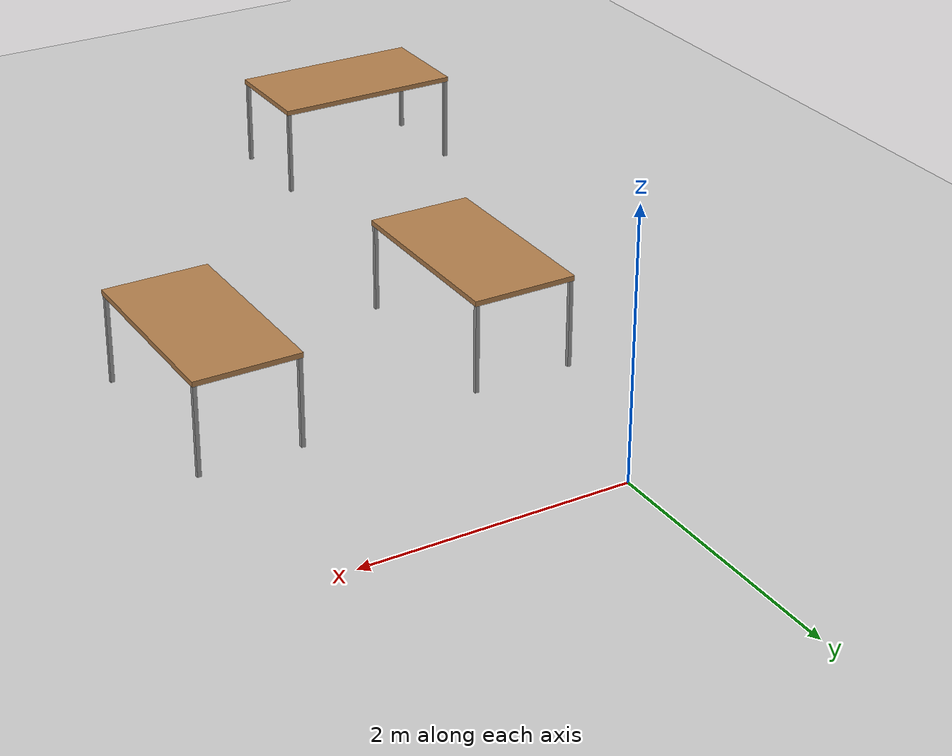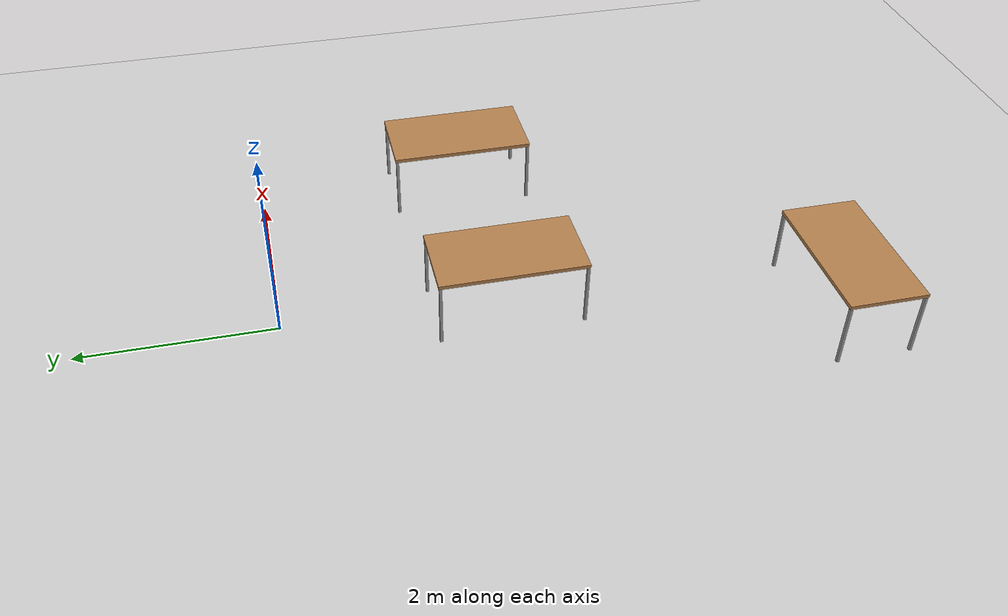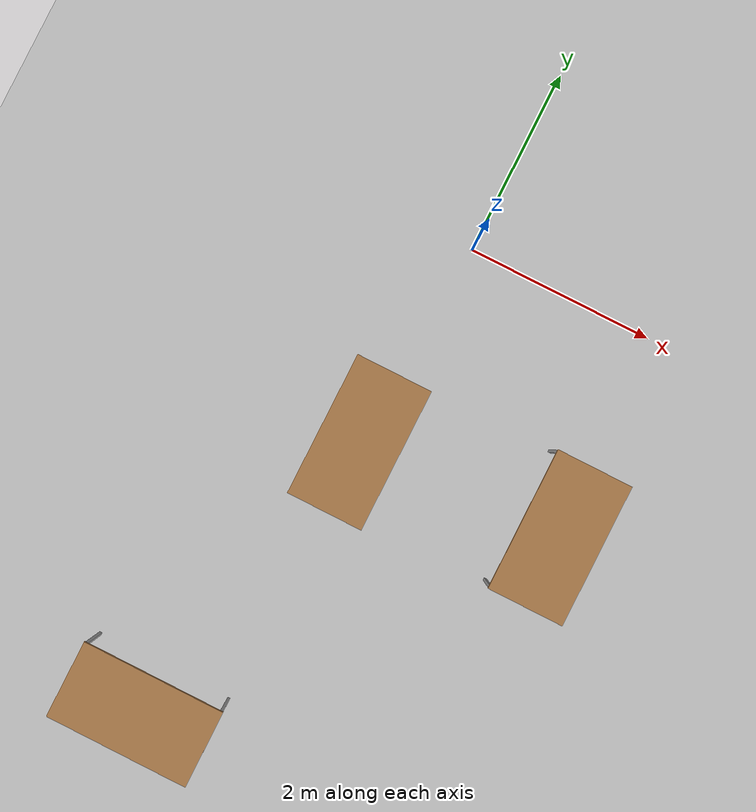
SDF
<sdf version="1.6">
 <world name="default">
  <model name="ground_plane">
   <static>1</static>
   <link name="link">
    <collision name="collision">
     <geometry><plane><normal>0 0 1</normal><size>100 100</size></plane></geometry>
     <surface>
      <contact><collide_bitmask>65535</collide_bitmask></contact>
      <friction><ode><mu>100</mu><mu2>50</mu2></ode></friction>
     </surface>
    </collision>
    <visual name="visual">
     <cast_shadows>0</cast_shadows>
     <geometry><plane><normal>0 0 1</normal><size>100 100</size></plane></geometry>
     <material>
      <script><uri>file://media/materials/scripts/gazebo.material</uri><name>Gazebo/Grey</name></script>
     </material>
    </visual>
   </link>
  </model>
  <model name="table_long">
   <link name="link">
    <inertial>
     <mass>1</mass>
     <inertia><ixx>1</ixx><ixy>0</ixy><ixz>0</ixz><iyy>1</iyy><iyz>0</iyz><izz>1</izz></inertia>
    </inertial>
    <visual name="front_left_leg">
     <pose>0.73 0.38 0.35 0 -0 0</pose>
     <geometry><box><size>0.03 0.03 0.7</size></box></geometry>
     <material>
      <script><uri>file://media/materials/scripts/gazebo.material</uri><name>Gazebo/Grey</name></script>
      <ambient>0.3 0.3 0.3 1</ambient>
      <diffuse>0.7 0.7 0.7 1</diffuse>
      <specular>0.01 0.01 0.01 1</specular>
      <emissive>0 0 0 1</emissive>
     </material>
    </visual>
    <visual name="front_right_leg">
     <pose>0.73 -0.38 0.35 0 -0 0</pose>
     <geometry><box><size>0.03 0.03 0.7</size></box></geometry>
     <material>
      <script><uri>file://media/materials/scripts/gazebo.material</uri><name>Gazebo/Grey</name></script>
      <ambient>0.3 0.3 0.3 1</ambient>
      <diffuse>0.7 0.7 0.7 1</diffuse>
      <specular>0.01 0.01 0.01 1</specular>
      <emissive>0 0 0 1</emissive>
     </material>
    </visual>
    <visual name="visual1">
     <pose>0 0 0.7 0 -0 0</pose>
     <geometry><box><size>1.5 0.8 0.04</size></box></geometry>
     <material>
      <script><uri>file://media/materials/scripts/gazebo.material</uri><name>Gazebo/Wood</name></script>
      <ambient>1 1 1 1</ambient>
      <diffuse>1 1 1 1</diffuse>
      <specular>0.2 0.2 0.2 1</specular>
      <emissive>0 0 0 1</emissive>
     </material>
    </visual>
    <visual name="back_right_leg">
     <pose>-0.73 -0.38 0.35 0 -0 0</pose>
     <geometry><box><size>0.03 0.03 0.7</size></box></geometry>
     <material>
      <script><uri>file://media/materials/scripts/gazebo.material</uri><name>Gazebo/Grey</name></script>
      <ambient>0.3 0.3 0.3 1</ambient>
      <diffuse>0.7 0.7 0.7 1</diffuse>
      <specular>0.01 0.01 0.01 1</specular>
      <emissive>0 0 0 1</emissive>
     </material>
    </visual>
    <visual name="back_left_leg">
     <pose>-0.73 0.38 0.35 0 -0 0</pose>
     <geometry><box><size>0.03 0.03 0.7</size></box></geometry>
     <material>
      <script><uri>file://media/materials/scripts/gazebo.material</uri><name>Gazebo/Grey</name></script>
      <ambient>0.3 0.3 0.3 1</ambient>
      <diffuse>0.7 0.7 0.7 1</diffuse>
      <specular>0.01 0.01 0.01 1</specular>
      <emissive>0 0 0 1</emissive>
     </material>
    </visual>
    <collision name="front_right_leg">
     <pose>0.73 -0.38 0.35 0 -0 0</pose>
     <geometry><box><size>0.03 0.03 0.7</size></box></geometry>
     <surface>
      <friction>
       <ode><mu>1</mu><mu2>1</mu2><fdir1>0 0 0</fdir1><slip1>0</slip1><slip2>0</slip2></ode>
       <torsional>
        <coefficient>1</coefficient>
        <patch_radius>0</patch_radius>
        <surface_radius>0</surface_radius>
        <use_patch_radius>1</use_patch_radius>
        <ode><slip>0</slip></ode>
       </torsional>
      </friction>
      <bounce><restitution_coefficient>0</restitution_coefficient><threshold>1e+06</threshold></bounce>
      <contact>
       <collide_without_contact>0</collide_without_contact>
       <collide_without_contact_bitmask>1</collide_without_contact_bitmask>
       <collide_bitmask>1</collide_bitmask>
       <ode>
        <soft_cfm>0</soft_cfm>
        <soft_erp>0.2</soft_erp>
        <kp>1e+13</kp>
        <kd>1</kd>
        <max_vel>0.01</max_vel>
        <min_depth>0</min_depth>
       </ode>
      </contact>
     </surface>
    </collision>
    <collision name="front_left_leg">
     <pose>0.73 0.38 0.35 0 -0 0</pose>
     <geometry><box><size>0.03 0.03 0.699999</size></box></geometry>
     <surface>
      <friction>
       <ode><mu>1</mu><mu2>1</mu2><fdir1>0 0 0</fdir1><slip1>0</slip1><slip2>0</slip2></ode>
       <torsional>
        <coefficient>1</coefficient>
        <patch_radius>0</patch_radius>
        <surface_radius>0</surface_radius>
        <use_patch_radius>1</use_patch_radius>
        <ode><slip>0</slip></ode>
       </torsional>
      </friction>
      <bounce><restitution_coefficient>0</restitution_coefficient><threshold>1e+06</threshold></bounce>
      <contact>
       <collide_without_contact>0</collide_without_contact>
       <collide_without_contact_bitmask>1</collide_without_contact_bitmask>
       <collide_bitmask>1</collide_bitmask>
       <ode>
        <soft_cfm>0</soft_cfm>
        <soft_erp>0.2</soft_erp>
        <kp>1e+13</kp>
        <kd>1</kd>
        <max_vel>0.01</max_vel>
        <min_depth>0</min_depth>
       </ode>
      </contact>
     </surface>
    </collision>
    <collision name="back_right_leg">
     <pose>-0.73 -0.38 0.35 0 -0 0</pose>
     <geometry><box><size>0.03 0.03 0.7</size></box></geometry>
     <surface>
      <friction>
       <ode><mu>1</mu><mu2>1</mu2><fdir1>0 0 0</fdir1><slip1>0</slip1><slip2>0</slip2></ode>
       <torsional>
        <coefficient>1</coefficient>
        <patch_radius>0</patch_radius>
        <surface_radius>0</surface_radius>
        <use_patch_radius>1</use_patch_radius>
        <ode><slip>0</slip></ode>
       </torsional>
      </friction>
      <bounce><restitution_coefficient>0</restitution_coefficient><threshold>1e+06</threshold></bounce>
      <contact>
       <collide_without_contact>0</collide_without_contact>
       <collide_without_contact_bitmask>1</collide_without_contact_bitmask>
       <collide_bitmask>1</collide_bitmask>
       <ode>
        <soft_cfm>0</soft_cfm>
        <soft_erp>0.2</soft_erp>
        <kp>1e+13</kp>
        <kd>1</kd>
        <max_vel>0.01</max_vel>
        <min_depth>0</min_depth>
       </ode>
      </contact>
     </surface>
    </collision>
    <collision name="surface">
     <pose>0 0 0.7 0 -0 0</pose>
     <geometry><box><size>1.5 0.8 0.04</size></box></geometry>
     <surface>
      <friction>
       <ode><mu>0.6</mu><mu2>0.6</mu2><fdir1>0 0 0</fdir1><slip1>0</slip1><slip2>0</slip2></ode>
       <torsional>
        <coefficient>1</coefficient>
        <patch_radius>0</patch_radius>
        <surface_radius>0</surface_radius>
        <use_patch_radius>1</use_patch_radius>
        <ode><slip>0</slip></ode>
       </torsional>
      </friction>
      <bounce><restitution_coefficient>0</restitution_coefficient><threshold>1e+06</threshold></bounce>
      <contact>
       <collide_without_contact>0</collide_without_contact>
       <collide_without_contact_bitmask>1</collide_without_contact_bitmask>
       <collide_bitmask>1</collide_bitmask>
       <ode>
        <soft_cfm>0</soft_cfm>
        <soft_erp>0.2</soft_erp>
        <kp>1e+13</kp>
        <kd>1</kd>
        <max_vel>0.01</max_vel>
        <min_depth>0</min_depth>
       </ode>
      </contact>
     </surface>
    </collision>
    <collision name="back_left_leg">
     <pose>-0.73 0.38 0.35 0 -0 0</pose>
     <geometry><box><size>0.03 0.03 0.7</size></box></geometry>
     <surface>
      <friction>
       <ode><mu>1</mu><mu2>1</mu2><fdir1>0 0 0</fdir1><slip1>0</slip1><slip2>0</slip2></ode>
       <torsional>
        <coefficient>1</coefficient>
        <patch_radius>0</patch_radius>
        <surface_radius>0</surface_radius>
        <use_patch_radius>1</use_patch_radius>
        <ode><slip>0</slip></ode>
       </torsional>
      </friction>
      <bounce><restitution_coefficient>0</restitution_coefficient><threshold>1e+06</threshold></bounce>
      <contact>
       <collide_without_contact>0</collide_without_contact>
       <collide_without_contact_bitmask>1</collide_without_contact_bitmask>
       <collide_bitmask>1</collide_bitmask>
       <ode>
        <soft_cfm>0</soft_cfm>
        <soft_erp>0.2</soft_erp>
        <kp>1e+13</kp>
        <kd>1</kd>
        <max_vel>0.01</max_vel>
        <min_depth>0</min_depth>
       </ode>
      </contact>
     </surface>
    </collision>
   </link>
   <static>1</static>
   <pose>-0.873749 -5.57004 0 0 -0 0</pose>
  </model>
  <model name="table_long_clone">
   <link name="link">
    <inertial>
     <mass>1</mass>
     <inertia><ixx>1</ixx><ixy>0</ixy><ixz>0</ixz><iyy>1</iyy><iyz>0</iyz><izz>1</izz></inertia>
    </inertial>
    <visual name="front_left_leg">
     <pose>0.73 0.38 0.35 0 -0 0</pose>
     <geometry><box><size>0.03 0.03 0.7</size></box></geometry>
     <material>
      <script><uri>file://media/materials/scripts/gazebo.material</uri><name>Gazebo/Grey</name></script>
      <ambient>0.3 0.3 0.3 1</ambient>
      <diffuse>0.7 0.7 0.7 1</diffuse>
      <specular>0.01 0.01 0.01 1</specular>
      <emissive>0 0 0 1</emissive>
     </material>
    </visual>
    <visual name="front_right_leg">
     <pose>0.73 -0.38 0.35 0 -0 0</pose>
     <geometry><box><size>0.03 0.03 0.7</size></box></geometry>
     <material>
      <script><uri>file://media/materials/scripts/gazebo.material</uri><name>Gazebo/Grey</name></script>
      <ambient>0.3 0.3 0.3 1</ambient>
      <diffuse>0.7 0.7 0.7 1</diffuse>
      <specular>0.01 0.01 0.01 1</specular>
      <emissive>0 0 0 1</emissive>
     </material>
    </visual>
    <visual name="visual1">
     <pose>0 0 0.7 0 -0 0</pose>
     <geometry><box><size>1.5 0.8 0.04</size></box></geometry>
     <material>
      <script><uri>file://media/materials/scripts/gazebo.material</uri><name>Gazebo/Wood</name></script>
      <ambient>1 1 1 1</ambient>
      <diffuse>1 1 1 1</diffuse>
      <specular>0.2 0.2 0.2 1</specular>
      <emissive>0 0 0 1</emissive>
     </material>
    </visual>
    <visual name="back_right_leg">
     <pose>-0.73 -0.38 0.35 0 -0 0</pose>
     <geometry><box><size>0.03 0.03 0.7</size></box></geometry>
     <material>
      <script><uri>file://media/materials/scripts/gazebo.material</uri><name>Gazebo/Grey</name></script>
      <ambient>0.3 0.3 0.3 1</ambient>
      <diffuse>0.7 0.7 0.7 1</diffuse>
      <specular>0.01 0.01 0.01 1</specular>
      <emissive>0 0 0 1</emissive>
     </material>
    </visual>
    <visual name="back_left_leg">
     <pose>-0.73 0.38 0.35 0 -0 0</pose>
     <geometry><box><size>0.03 0.03 0.7</size></box></geometry>
     <material>
      <script><uri>file://media/materials/scripts/gazebo.material</uri><name>Gazebo/Grey</name></script>
      <ambient>0.3 0.3 0.3 1</ambient>
      <diffuse>0.7 0.7 0.7 1</diffuse>
      <specular>0.01 0.01 0.01 1</specular>
      <emissive>0 0 0 1</emissive>
     </material>
    </visual>
    <collision name="front_right_leg">
     <pose>0.73 -0.38 0.35 0 -0 0</pose>
     <geometry><box><size>0.03 0.03 0.7</size></box></geometry>
     <surface>
      <friction>
       <ode><mu>1</mu><mu2>1</mu2><fdir1>0 0 0</fdir1><slip1>0</slip1><slip2>0</slip2></ode>
       <torsional>
        <coefficient>1</coefficient>
        <patch_radius>0</patch_radius>
        <surface_radius>0</surface_radius>
        <use_patch_radius>1</use_patch_radius>
        <ode><slip>0</slip></ode>
       </torsional>
      </friction>
      <bounce><restitution_coefficient>0</restitution_coefficient><threshold>1e+06</threshold></bounce>
      <contact>
       <collide_without_contact>0</collide_without_contact>
       <collide_without_contact_bitmask>1</collide_without_contact_bitmask>
       <collide_bitmask>1</collide_bitmask>
       <ode>
        <soft_cfm>0</soft_cfm>
        <soft_erp>0.2</soft_erp>
        <kp>1e+13</kp>
        <kd>1</kd>
        <max_vel>0.01</max_vel>
        <min_depth>0</min_depth>
       </ode>
      </contact>
     </surface>
    </collision>
    <collision name="front_left_leg">
     <pose>0.73 0.38 0.35 0 -0 0</pose>
     <geometry><box><size>0.03 0.03 0.699999</size></box></geometry>
     <surface>
      <friction>
       <ode><mu>1</mu><mu2>1</mu2><fdir1>0 0 0</fdir1><slip1>0</slip1><slip2>0</slip2></ode>
       <torsional>
        <coefficient>1</coefficient>
        <patch_radius>0</patch_radius>
        <surface_radius>0</surface_radius>
        <use_patch_radius>1</use_patch_radius>
        <ode><slip>0</slip></ode>
       </torsional>
      </friction>
      <bounce><restitution_coefficient>0</restitution_coefficient><threshold>1e+06</threshold></bounce>
      <contact>
       <collide_without_contact>0</collide_without_contact>
       <collide_without_contact_bitmask>1</collide_without_contact_bitmask>
       <collide_bitmask>1</collide_bitmask>
       <ode>
        <soft_cfm>0</soft_cfm>
        <soft_erp>0.2</soft_erp>
        <kp>1e+13</kp>
        <kd>1</kd>
        <max_vel>0.01</max_vel>
        <min_depth>0</min_depth>
       </ode>
      </contact>
     </surface>
    </collision>
    <collision name="back_right_leg">
     <pose>-0.73 -0.38 0.35 0 -0 0</pose>
     <geometry><box><size>0.03 0.03 0.7</size></box></geometry>
     <surface>
      <friction>
       <ode><mu>1</mu><mu2>1</mu2><fdir1>0 0 0</fdir1><slip1>0</slip1><slip2>0</slip2></ode>
       <torsional>
        <coefficient>1</coefficient>
        <patch_radius>0</patch_radius>
        <surface_radius>0</surface_radius>
        <use_patch_radius>1</use_patch_radius>
        <ode><slip>0</slip></ode>
       </torsional>
      </friction>
      <bounce><restitution_coefficient>0</restitution_coefficient><threshold>1e+06</threshold></bounce>
      <contact>
       <collide_without_contact>0</collide_without_contact>
       <collide_without_contact_bitmask>1</collide_without_contact_bitmask>
       <collide_bitmask>1</collide_bitmask>
       <ode>
        <soft_cfm>0</soft_cfm>
        <soft_erp>0.2</soft_erp>
        <kp>1e+13</kp>
        <kd>1</kd>
        <max_vel>0.01</max_vel>
        <min_depth>0</min_depth>
       </ode>
      </contact>
     </surface>
    </collision>
    <collision name="surface">
     <pose>0 0 0.7 0 -0 0</pose>
     <geometry><box><size>1.5 0.8 0.04</size></box></geometry>
     <surface>
      <friction>
       <ode><mu>0.6</mu><mu2>0.6</mu2><fdir1>0 0 0</fdir1><slip1>0</slip1><slip2>0</slip2></ode>
       <torsional>
        <coefficient>1</coefficient>
        <patch_radius>0</patch_radius>
        <surface_radius>0</surface_radius>
        <use_patch_radius>1</use_patch_radius>
        <ode><slip>0</slip></ode>
       </torsional>
      </friction>
      <bounce><restitution_coefficient>0</restitution_coefficient><threshold>1e+06</threshold></bounce>
      <contact>
       <collide_without_contact>0</collide_without_contact>
       <collide_without_contact_bitmask>1</collide_without_contact_bitmask>
       <collide_bitmask>1</collide_bitmask>
       <ode>
        <soft_cfm>0</soft_cfm>
        <soft_erp>0.2</soft_erp>
        <kp>1e+13</kp>
        <kd>1</kd>
        <max_vel>0.01</max_vel>
        <min_depth>0</min_depth>
       </ode>
      </contact>
     </surface>
    </collision>
    <collision name="back_left_leg">
     <pose>-0.73 0.38 0.35 0 -0 0</pose>
     <geometry><box><size>0.03 0.03 0.7</size></box></geometry>
     <surface>
      <friction>
       <ode><mu>1</mu><mu2>1</mu2><fdir1>0 0 0</fdir1><slip1>0</slip1><slip2>0</slip2></ode>
       <torsional>
        <coefficient>1</coefficient>
        <patch_radius>0</patch_radius>
        <surface_radius>0</surface_radius>
        <use_patch_radius>1</use_patch_radius>
        <ode><slip>0</slip></ode>
       </torsional>
      </friction>
      <bounce><restitution_coefficient>0</restitution_coefficient><threshold>1e+06</threshold></bounce>
      <contact>
       <collide_without_contact>0</collide_without_contact>
       <collide_without_contact_bitmask>1</collide_without_contact_bitmask>
       <collide_bitmask>1</collide_bitmask>
       <ode>
        <soft_cfm>0</soft_cfm>
        <soft_erp>0.2</soft_erp>
        <kp>1e+13</kp>
        <kd>1</kd>
        <max_vel>0.01</max_vel>
        <min_depth>0</min_depth>
       </ode>
      </contact>
     </surface>
    </collision>
   </link>
   <static>1</static>
   <pose>-0.133139 -2.26203 0 0 -0 1.57</pose>
  </model>
  <model name="table_long_clone_clone">
   <link name="link">
    <inertial>
     <mass>1</mass>
     <inertia><ixx>1</ixx><ixy>0</ixy><ixz>0</ixz><iyy>1</iyy><iyz>0</iyz><izz>1</izz></inertia>
    </inertial>
    <visual name="front_left_leg">
     <pose>0.73 0.38 0.35 0 -0 0</pose>
     <geometry><box><size>0.03 0.03 0.7</size></box></geometry>
     <material>
      <script><uri>file://media/materials/scripts/gazebo.material</uri><name>Gazebo/Grey</name></script>
      <ambient>0.3 0.3 0.3 1</ambient>
      <diffuse>0.7 0.7 0.7 1</diffuse>
      <specular>0.01 0.01 0.01 1</specular>
      <emissive>0 0 0 1</emissive>
     </material>
    </visual>
    <visual name="front_right_leg">
     <pose>0.73 -0.38 0.35 0 -0 0</pose>
     <geometry><box><size>0.03 0.03 0.7</size></box></geometry>
     <material>
      <script><uri>file://media/materials/scripts/gazebo.material</uri><name>Gazebo/Grey</name></script>
      <ambient>0.3 0.3 0.3 1</ambient>
      <diffuse>0.7 0.7 0.7 1</diffuse>
      <specular>0.01 0.01 0.01 1</specular>
      <emissive>0 0 0 1</emissive>
     </material>
    </visual>
    <visual name="visual1">
     <pose>0 0 0.7 0 -0 0</pose>
     <geometry><box><size>1.5 0.8 0.04</size></box></geometry>
     <material>
      <script><uri>file://media/materials/scripts/gazebo.material</uri><name>Gazebo/Wood</name></script>
      <ambient>1 1 1 1</ambient>
      <diffuse>1 1 1 1</diffuse>
      <specular>0.2 0.2 0.2 1</specular>
      <emissive>0 0 0 1</emissive>
     </material>
    </visual>
    <visual name="back_right_leg">
     <pose>-0.73 -0.38 0.35 0 -0 0</pose>
     <geometry><box><size>0.03 0.03 0.7</size></box></geometry>
     <material>
      <script><uri>file://media/materials/scripts/gazebo.material</uri><name>Gazebo/Grey</name></script>
      <ambient>0.3 0.3 0.3 1</ambient>
      <diffuse>0.7 0.7 0.7 1</diffuse>
      <specular>0.01 0.01 0.01 1</specular>
      <emissive>0 0 0 1</emissive>
     </material>
    </visual>
    <visual name="back_left_leg">
     <pose>-0.73 0.38 0.35 0 -0 0</pose>
     <geometry><box><size>0.03 0.03 0.7</size></box></geometry>
     <material>
      <script><uri>file://media/materials/scripts/gazebo.material</uri><name>Gazebo/Grey</name></script>
      <ambient>0.3 0.3 0.3 1</ambient>
      <diffuse>0.7 0.7 0.7 1</diffuse>
      <specular>0.01 0.01 0.01 1</specular>
      <emissive>0 0 0 1</emissive>
     </material>
    </visual>
    <collision name="front_right_leg">
     <pose>0.73 -0.38 0.35 0 -0 0</pose>
     <geometry><box><size>0.03 0.03 0.7</size></box></geometry>
     <surface>
      <friction>
       <ode><mu>1</mu><mu2>1</mu2><fdir1>0 0 0</fdir1><slip1>0</slip1><slip2>0</slip2></ode>
       <torsional>
        <coefficient>1</coefficient>
        <patch_radius>0</patch_radius>
        <surface_radius>0</surface_radius>
        <use_patch_radius>1</use_patch_radius>
        <ode><slip>0</slip></ode>
       </torsional>
      </friction>
      <bounce><restitution_coefficient>0</restitution_coefficient><threshold>1e+06</threshold></bounce>
      <contact>
       <collide_without_contact>0</collide_without_contact>
       <collide_without_contact_bitmask>1</collide_without_contact_bitmask>
       <collide_bitmask>1</collide_bitmask>
       <ode>
        <soft_cfm>0</soft_cfm>
        <soft_erp>0.2</soft_erp>
        <kp>1e+13</kp>
        <kd>1</kd>
        <max_vel>0.01</max_vel>
        <min_depth>0</min_depth>
       </ode>
      </contact>
     </surface>
    </collision>
    <collision name="front_left_leg">
     <pose>0.73 0.38 0.35 0 -0 0</pose>
     <geometry><box><size>0.03 0.03 0.699999</size></box></geometry>
     <surface>
      <friction>
       <ode><mu>1</mu><mu2>1</mu2><fdir1>0 0 0</fdir1><slip1>0</slip1><slip2>0</slip2></ode>
       <torsional>
        <coefficient>1</coefficient>
        <patch_radius>0</patch_radius>
        <surface_radius>0</surface_radius>
        <use_patch_radius>1</use_patch_radius>
        <ode><slip>0</slip></ode>
       </torsional>
      </friction>
      <bounce><restitution_coefficient>0</restitution_coefficient><threshold>1e+06</threshold></bounce>
      <contact>
       <collide_without_contact>0</collide_without_contact>
       <collide_without_contact_bitmask>1</collide_without_contact_bitmask>
       <collide_bitmask>1</collide_bitmask>
       <ode>
        <soft_cfm>0</soft_cfm>
        <soft_erp>0.2</soft_erp>
        <kp>1e+13</kp>
        <kd>1</kd>
        <max_vel>0.01</max_vel>
        <min_depth>0</min_depth>
       </ode>
      </contact>
     </surface>
    </collision>
    <collision name="back_right_leg">
     <pose>-0.73 -0.38 0.35 0 -0 0</pose>
     <geometry><box><size>0.03 0.03 0.7</size></box></geometry>
     <surface>
      <friction>
       <ode><mu>1</mu><mu2>1</mu2><fdir1>0 0 0</fdir1><slip1>0</slip1><slip2>0</slip2></ode>
       <torsional>
        <coefficient>1</coefficient>
        <patch_radius>0</patch_radius>
        <surface_radius>0</surface_radius>
        <use_patch_radius>1</use_patch_radius>
        <ode><slip>0</slip></ode>
       </torsional>
      </friction>
      <bounce><restitution_coefficient>0</restitution_coefficient><threshold>1e+06</threshold></bounce>
      <contact>
       <collide_without_contact>0</collide_without_contact>
       <collide_without_contact_bitmask>1</collide_without_contact_bitmask>
       <collide_bitmask>1</collide_bitmask>
       <ode>
        <soft_cfm>0</soft_cfm>
        <soft_erp>0.2</soft_erp>
        <kp>1e+13</kp>
        <kd>1</kd>
        <max_vel>0.01</max_vel>
        <min_depth>0</min_depth>
       </ode>
      </contact>
     </surface>
    </collision>
    <collision name="surface">
     <pose>0 0 0.7 0 -0 0</pose>
     <geometry><box><size>1.5 0.8 0.04</size></box></geometry>
     <surface>
      <friction>
       <ode><mu>0.6</mu><mu2>0.6</mu2><fdir1>0 0 0</fdir1><slip1>0</slip1><slip2>0</slip2></ode>
       <torsional>
        <coefficient>1</coefficient>
        <patch_radius>0</patch_radius>
        <surface_radius>0</surface_radius>
        <use_patch_radius>1</use_patch_radius>
        <ode><slip>0</slip></ode>
       </torsional>
      </friction>
      <bounce><restitution_coefficient>0</restitution_coefficient><threshold>1e+06</threshold></bounce>
      <contact>
       <collide_without_contact>0</collide_without_contact>
       <collide_without_contact_bitmask>1</collide_without_contact_bitmask>
       <collide_bitmask>1</collide_bitmask>
       <ode>
        <soft_cfm>0</soft_cfm>
        <soft_erp>0.2</soft_erp>
        <kp>1e+13</kp>
        <kd>1</kd>
        <max_vel>0.01</max_vel>
        <min_depth>0</min_depth>
       </ode>
      </contact>
     </surface>
    </collision>
    <collision name="back_left_leg">
     <pose>-0.73 0.38 0.35 0 -0 0</pose>
     <geometry><box><size>0.03 0.03 0.7</size></box></geometry>
     <surface>
      <friction>
       <ode><mu>1</mu><mu2>1</mu2><fdir1>0 0 0</fdir1><slip1>0</slip1><slip2>0</slip2></ode>
       <torsional>
        <coefficient>1</coefficient>
        <patch_radius>0</patch_radius>
        <surface_radius>0</surface_radius>
        <use_patch_radius>1</use_patch_radius>
        <ode><slip>0</slip></ode>
       </torsional>
      </friction>
      <bounce><restitution_coefficient>0</restitution_coefficient><threshold>1e+06</threshold></bounce>
      <contact>
       <collide_without_contact>0</collide_without_contact>
       <collide_without_contact_bitmask>1</collide_without_contact_bitmask>
       <collide_bitmask>1</collide_bitmask>
       <ode>
        <soft_cfm>0</soft_cfm>
        <soft_erp>0.2</soft_erp>
        <kp>1e+13</kp>
        <kd>1</kd>
        <max_vel>0.01</max_vel>
        <min_depth>0</min_depth>
       </ode>
      </contact>
     </surface>
    </collision>
   </link>
   <static>1</static>
   <pose>2.00768 -2.20722 0 0 -0 1.57</pose>
  </model>
 </world>
</sdf>
